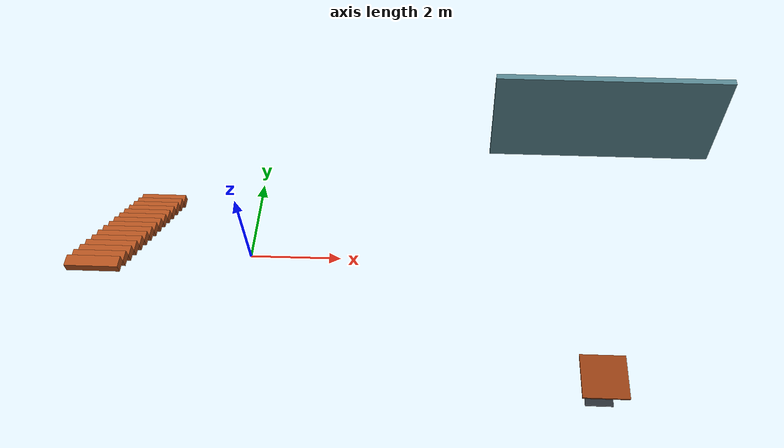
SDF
<sdf version="1.6">
 <world name="default">
  <model name="inco_planta_baja_0">
   <link name="Stairs_0">
    <visual name="Stairs_0_Visual_2">
     <pose>-9.24623 1.59162 0.416667 0 -0 0</pose>
     <geometry><box><size>1 0.233333 0.166667</size></box></geometry>
     <material>
      <ambient>0.25 0.12 0.05 1</ambient>
      <diffuse>0.70 0.32 0.12 1</diffuse>
      <specular>0.12 0.12 0.12 1</specular>
      <emissive>0 0 0 1</emissive>
     </material>
    </visual>
    <visual name="Stairs_0_Visual_0">
     <pose>-9.24623 2.05829 0.083333 0 -0 0</pose>
     <geometry><box><size>1 0.233333 0.166667</size></box></geometry>
     <material>
      <ambient>0.25 0.12 0.05 1</ambient>
      <diffuse>0.70 0.32 0.12 1</diffuse>
      <specular>0.12 0.12 0.12 1</specular>
      <emissive>0 0 0 1</emissive>
     </material>
    </visual>
    <visual name="Stairs_0_Visual_1">
     <pose>-9.24623 1.82496 0.25 0 -0 0</pose>
     <geometry><box><size>1 0.233333 0.166667</size></box></geometry>
     <material>
      <ambient>0.25 0.12 0.05 1</ambient>
      <diffuse>0.70 0.32 0.12 1</diffuse>
      <specular>0.12 0.12 0.12 1</specular>
      <emissive>0 0 0 1</emissive>
     </material>
    </visual>
    <visual name="Stairs_0_Visual_3">
     <pose>-9.24623 1.35829 0.583333 0 -0 0</pose>
     <geometry><box><size>1 0.233333 0.166667</size></box></geometry>
     <material>
      <ambient>0.25 0.12 0.05 1</ambient>
      <diffuse>0.70 0.32 0.12 1</diffuse>
      <specular>0.12 0.12 0.12 1</specular>
      <emissive>0 0 0 1</emissive>
     </material>
    </visual>
    <visual name="Stairs_0_Visual_4">
     <pose>-9.24623 1.12495 0.75 0 -0 0</pose>
     <geometry><box><size>1 0.233333 0.166667</size></box></geometry>
     <material>
      <ambient>0.25 0.12 0.05 1</ambient>
      <diffuse>0.70 0.32 0.12 1</diffuse>
      <specular>0.12 0.12 0.12 1</specular>
      <emissive>0 0 0 1</emissive>
     </material>
    </visual>
    <visual name="Stairs_0_Visual_5">
     <pose>-9.24623 0.891622 0.916667 0 -0 0</pose>
     <geometry><box><size>1 0.233333 0.166667</size></box></geometry>
     <material>
      <ambient>0.25 0.12 0.05 1</ambient>
      <diffuse>0.70 0.32 0.12 1</diffuse>
      <specular>0.12 0.12 0.12 1</specular>
      <emissive>0 0 0 1</emissive>
     </material>
    </visual>
    <visual name="Stairs_0_Visual_6">
     <pose>-9.24623 0.658289 1.08333 0 -0 0</pose>
     <geometry><box><size>1 0.233333 0.166667</size></box></geometry>
     <material>
      <ambient>0.25 0.12 0.05 1</ambient>
      <diffuse>0.70 0.32 0.12 1</diffuse>
      <specular>0.12 0.12 0.12 1</specular>
      <emissive>0 0 0 1</emissive>
     </material>
    </visual>
    <visual name="Stairs_0_Visual_8">
     <pose>-9.24623 0.191622 1.41667 0 -0 0</pose>
     <geometry><box><size>1 0.233333 0.166667</size></box></geometry>
     <material>
      <ambient>0.25 0.12 0.05 1</ambient>
      <diffuse>0.70 0.32 0.12 1</diffuse>
      <specular>0.12 0.12 0.12 1</specular>
      <emissive>0 0 0 1</emissive>
     </material>
    </visual>
    <visual name="Stairs_0_Visual_7">
     <pose>-9.24623 0.424955 1.25 0 -0 0</pose>
     <geometry><box><size>1 0.233333 0.166667</size></box></geometry>
     <material>
      <ambient>0.25 0.12 0.05 1</ambient>
      <diffuse>0.70 0.32 0.12 1</diffuse>
      <specular>0.12 0.12 0.12 1</specular>
      <emissive>0 0 0 1</emissive>
     </material>
    </visual>
    <visual name="Stairs_0_Visual_9">
     <pose>-9.24623 -0.041711 1.58333 0 -0 0</pose>
     <geometry><box><size>1 0.233333 0.166667</size></box></geometry>
     <material>
      <ambient>0.25 0.12 0.05 1</ambient>
      <diffuse>0.70 0.32 0.12 1</diffuse>
      <specular>0.12 0.12 0.12 1</specular>
      <emissive>0 0 0 1</emissive>
     </material>
    </visual>
    <visual name="Stairs_0_Visual_10">
     <pose>-9.24623 -0.275045 1.75 0 -0 0</pose>
     <geometry><box><size>1 0.233333 0.166667</size></box></geometry>
     <material>
      <ambient>0.25 0.12 0.05 1</ambient>
      <diffuse>0.70 0.32 0.12 1</diffuse>
      <specular>0.12 0.12 0.12 1</specular>
      <emissive>0 0 0 1</emissive>
     </material>
    </visual>
    <visual name="Stairs_0_Visual_11">
     <pose>-9.24623 -0.508378 1.91667 0 -0 0</pose>
     <geometry><box><size>1 0.233333 0.166667</size></box></geometry>
     <material>
      <ambient>0.25 0.12 0.05 1</ambient>
      <diffuse>0.70 0.32 0.12 1</diffuse>
      <specular>0.12 0.12 0.12 1</specular>
      <emissive>0 0 0 1</emissive>
     </material>
    </visual>
    <visual name="Stairs_0_Visual_12">
     <pose>-9.24623 -0.741711 2.08333 0 -0 0</pose>
     <geometry><box><size>1 0.233333 0.166667</size></box></geometry>
     <material>
      <ambient>0.25 0.12 0.05 1</ambient>
      <diffuse>0.70 0.32 0.12 1</diffuse>
      <specular>0.12 0.12 0.12 1</specular>
      <emissive>0 0 0 1</emissive>
     </material>
    </visual>
    <visual name="Stairs_0_Visual_13">
     <pose>-9.24623 -0.975045 2.25 0 -0 0</pose>
     <geometry><box><size>1 0.233333 0.166667</size></box></geometry>
     <material>
      <ambient>0.25 0.12 0.05 1</ambient>
      <diffuse>0.70 0.32 0.12 1</diffuse>
      <specular>0.12 0.12 0.12 1</specular>
      <emissive>0 0 0 1</emissive>
     </material>
    </visual>
    <visual name="Stairs_0_Visual_14">
     <pose>-9.24623 -1.20838 2.41667 0 -0 0</pose>
     <geometry><box><size>1 0.233333 0.166667</size></box></geometry>
     <material>
      <ambient>0.25 0.12 0.05 1</ambient>
      <diffuse>0.70 0.32 0.12 1</diffuse>
      <specular>0.12 0.12 0.12 1</specular>
      <emissive>0 0 0 1</emissive>
     </material>
    </visual>
    <collision name="Stairs_0_Collision_0">
     <pose>-9.24623 2.05829 0.083333 0 -0 0</pose>
     <geometry><box><size>1 0.233333 0.166667</size></box></geometry>
     <surface>
      <friction>
       <ode><mu>1</mu><mu2>1</mu2><fdir1>0 0 0</fdir1><slip1>0</slip1><slip2>0</slip2></ode>
       <torsional>
        <coefficient>1</coefficient>
        <patch_radius>0</patch_radius>
        <surface_radius>0</surface_radius>
        <use_patch_radius>1</use_patch_radius>
        <ode><slip>0</slip></ode>
       </torsional>
      </friction>
      <bounce><restitution_coefficient>0</restitution_coefficient><threshold>1e+06</threshold></bounce>
      <contact>
       <collide_without_contact>0</collide_without_contact>
       <collide_without_contact_bitmask>1</collide_without_contact_bitmask>
       <collide_bitmask>1</collide_bitmask>
       <ode>
        <soft_cfm>0</soft_cfm>
        <soft_erp>0.2</soft_erp>
        <kp>1e+13</kp>
        <kd>1</kd>
        <max_vel>0.01</max_vel>
        <min_depth>0</min_depth>
       </ode>
       <bullet>
        <split_impulse>1</split_impulse>
        <split_impulse_penetration_threshold>-0.01</split_impulse_penetration_threshold>
        <soft_cfm>0</soft_cfm>
        <soft_erp>0.2</soft_erp>
        <kp>1e+13</kp>
        <kd>1</kd>
       </bullet>
      </contact>
     </surface>
    </collision>
    <collision name="Stairs_0_Collision_1">
     <pose>-9.24623 1.82496 0.25 0 -0 0</pose>
     <geometry><box><size>1 0.233333 0.166667</size></box></geometry>
     <surface>
      <friction>
       <ode><mu>1</mu><mu2>1</mu2><fdir1>0 0 0</fdir1><slip1>0</slip1><slip2>0</slip2></ode>
       <torsional>
        <coefficient>1</coefficient>
        <patch_radius>0</patch_radius>
        <surface_radius>0</surface_radius>
        <use_patch_radius>1</use_patch_radius>
        <ode><slip>0</slip></ode>
       </torsional>
      </friction>
      <bounce><restitution_coefficient>0</restitution_coefficient><threshold>1e+06</threshold></bounce>
      <contact>
       <collide_without_contact>0</collide_without_contact>
       <collide_without_contact_bitmask>1</collide_without_contact_bitmask>
       <collide_bitmask>1</collide_bitmask>
       <ode>
        <soft_cfm>0</soft_cfm>
        <soft_erp>0.2</soft_erp>
        <kp>1e+13</kp>
        <kd>1</kd>
        <max_vel>0.01</max_vel>
        <min_depth>0</min_depth>
       </ode>
       <bullet>
        <split_impulse>1</split_impulse>
        <split_impulse_penetration_threshold>-0.01</split_impulse_penetration_threshold>
        <soft_cfm>0</soft_cfm>
        <soft_erp>0.2</soft_erp>
        <kp>1e+13</kp>
        <kd>1</kd>
       </bullet>
      </contact>
     </surface>
    </collision>
    <collision name="Stairs_0_Collision_7">
     <pose>-9.24623 0.424955 1.25 0 -0 0</pose>
     <geometry><box><size>1 0.233333 0.166667</size></box></geometry>
     <surface>
      <friction>
       <ode><mu>1</mu><mu2>1</mu2><fdir1>0 0 0</fdir1><slip1>0</slip1><slip2>0</slip2></ode>
       <torsional>
        <coefficient>1</coefficient>
        <patch_radius>0</patch_radius>
        <surface_radius>0</surface_radius>
        <use_patch_radius>1</use_patch_radius>
        <ode><slip>0</slip></ode>
       </torsional>
      </friction>
      <bounce><restitution_coefficient>0</restitution_coefficient><threshold>1e+06</threshold></bounce>
      <contact>
       <collide_without_contact>0</collide_without_contact>
       <collide_without_contact_bitmask>1</collide_without_contact_bitmask>
       <collide_bitmask>1</collide_bitmask>
       <ode>
        <soft_cfm>0</soft_cfm>
        <soft_erp>0.2</soft_erp>
        <kp>1e+13</kp>
        <kd>1</kd>
        <max_vel>0.01</max_vel>
        <min_depth>0</min_depth>
       </ode>
       <bullet>
        <split_impulse>1</split_impulse>
        <split_impulse_penetration_threshold>-0.01</split_impulse_penetration_threshold>
        <soft_cfm>0</soft_cfm>
        <soft_erp>0.2</soft_erp>
        <kp>1e+13</kp>
        <kd>1</kd>
       </bullet>
      </contact>
     </surface>
    </collision>
    <collision name="Stairs_0_Collision_2">
     <pose>-9.24623 1.59162 0.416667 0 -0 0</pose>
     <geometry><box><size>1 0.233333 0.166667</size></box></geometry>
     <surface>
      <friction>
       <ode><mu>1</mu><mu2>1</mu2><fdir1>0 0 0</fdir1><slip1>0</slip1><slip2>0</slip2></ode>
       <torsional>
        <coefficient>1</coefficient>
        <patch_radius>0</patch_radius>
        <surface_radius>0</surface_radius>
        <use_patch_radius>1</use_patch_radius>
        <ode><slip>0</slip></ode>
       </torsional>
      </friction>
      <bounce><restitution_coefficient>0</restitution_coefficient><threshold>1e+06</threshold></bounce>
      <contact>
       <collide_without_contact>0</collide_without_contact>
       <collide_without_contact_bitmask>1</collide_without_contact_bitmask>
       <collide_bitmask>1</collide_bitmask>
       <ode>
        <soft_cfm>0</soft_cfm>
        <soft_erp>0.2</soft_erp>
        <kp>1e+13</kp>
        <kd>1</kd>
        <max_vel>0.01</max_vel>
        <min_depth>0</min_depth>
       </ode>
       <bullet>
        <split_impulse>1</split_impulse>
        <split_impulse_penetration_threshold>-0.01</split_impulse_penetration_threshold>
        <soft_cfm>0</soft_cfm>
        <soft_erp>0.2</soft_erp>
        <kp>1e+13</kp>
        <kd>1</kd>
       </bullet>
      </contact>
     </surface>
    </collision>
    <collision name="Stairs_0_Collision_3">
     <pose>-9.24623 1.35829 0.583333 0 -0 0</pose>
     <geometry><box><size>1 0.233333 0.166667</size></box></geometry>
     <surface>
      <friction>
       <ode><mu>1</mu><mu2>1</mu2><fdir1>0 0 0</fdir1><slip1>0</slip1><slip2>0</slip2></ode>
       <torsional>
        <coefficient>1</coefficient>
        <patch_radius>0</patch_radius>
        <surface_radius>0</surface_radius>
        <use_patch_radius>1</use_patch_radius>
        <ode><slip>0</slip></ode>
       </torsional>
      </friction>
      <bounce><restitution_coefficient>0</restitution_coefficient><threshold>1e+06</threshold></bounce>
      <contact>
       <collide_without_contact>0</collide_without_contact>
       <collide_without_contact_bitmask>1</collide_without_contact_bitmask>
       <collide_bitmask>1</collide_bitmask>
       <ode>
        <soft_cfm>0</soft_cfm>
        <soft_erp>0.2</soft_erp>
        <kp>1e+13</kp>
        <kd>1</kd>
        <max_vel>0.01</max_vel>
        <min_depth>0</min_depth>
       </ode>
       <bullet>
        <split_impulse>1</split_impulse>
        <split_impulse_penetration_threshold>-0.01</split_impulse_penetration_threshold>
        <soft_cfm>0</soft_cfm>
        <soft_erp>0.2</soft_erp>
        <kp>1e+13</kp>
        <kd>1</kd>
       </bullet>
      </contact>
     </surface>
    </collision>
    <collision name="Stairs_0_Collision_4">
     <pose>-9.24623 1.12495 0.75 0 -0 0</pose>
     <geometry><box><size>1 0.233333 0.166667</size></box></geometry>
     <surface>
      <friction>
       <ode><mu>1</mu><mu2>1</mu2><fdir1>0 0 0</fdir1><slip1>0</slip1><slip2>0</slip2></ode>
       <torsional>
        <coefficient>1</coefficient>
        <patch_radius>0</patch_radius>
        <surface_radius>0</surface_radius>
        <use_patch_radius>1</use_patch_radius>
        <ode><slip>0</slip></ode>
       </torsional>
      </friction>
      <bounce><restitution_coefficient>0</restitution_coefficient><threshold>1e+06</threshold></bounce>
      <contact>
       <collide_without_contact>0</collide_without_contact>
       <collide_without_contact_bitmask>1</collide_without_contact_bitmask>
       <collide_bitmask>1</collide_bitmask>
       <ode>
        <soft_cfm>0</soft_cfm>
        <soft_erp>0.2</soft_erp>
        <kp>1e+13</kp>
        <kd>1</kd>
        <max_vel>0.01</max_vel>
        <min_depth>0</min_depth>
       </ode>
       <bullet>
        <split_impulse>1</split_impulse>
        <split_impulse_penetration_threshold>-0.01</split_impulse_penetration_threshold>
        <soft_cfm>0</soft_cfm>
        <soft_erp>0.2</soft_erp>
        <kp>1e+13</kp>
        <kd>1</kd>
       </bullet>
      </contact>
     </surface>
    </collision>
    <collision name="Stairs_0_Collision_5">
     <pose>-9.24623 0.891622 0.916667 0 -0 0</pose>
     <geometry><box><size>1 0.233333 0.166667</size></box></geometry>
     <surface>
      <friction>
       <ode><mu>1</mu><mu2>1</mu2><fdir1>0 0 0</fdir1><slip1>0</slip1><slip2>0</slip2></ode>
       <torsional>
        <coefficient>1</coefficient>
        <patch_radius>0</patch_radius>
        <surface_radius>0</surface_radius>
        <use_patch_radius>1</use_patch_radius>
        <ode><slip>0</slip></ode>
       </torsional>
      </friction>
      <bounce><restitution_coefficient>0</restitution_coefficient><threshold>1e+06</threshold></bounce>
      <contact>
       <collide_without_contact>0</collide_without_contact>
       <collide_without_contact_bitmask>1</collide_without_contact_bitmask>
       <collide_bitmask>1</collide_bitmask>
       <ode>
        <soft_cfm>0</soft_cfm>
        <soft_erp>0.2</soft_erp>
        <kp>1e+13</kp>
        <kd>1</kd>
        <max_vel>0.01</max_vel>
        <min_depth>0</min_depth>
       </ode>
       <bullet>
        <split_impulse>1</split_impulse>
        <split_impulse_penetration_threshold>-0.01</split_impulse_penetration_threshold>
        <soft_cfm>0</soft_cfm>
        <soft_erp>0.2</soft_erp>
        <kp>1e+13</kp>
        <kd>1</kd>
       </bullet>
      </contact>
     </surface>
    </collision>
    <collision name="Stairs_0_Collision_6">
     <pose>-9.24623 0.658289 1.08333 0 -0 0</pose>
     <geometry><box><size>1 0.233333 0.166667</size></box></geometry>
     <surface>
      <friction>
       <ode><mu>1</mu><mu2>1</mu2><fdir1>0 0 0</fdir1><slip1>0</slip1><slip2>0</slip2></ode>
       <torsional>
        <coefficient>1</coefficient>
        <patch_radius>0</patch_radius>
        <surface_radius>0</surface_radius>
        <use_patch_radius>1</use_patch_radius>
        <ode><slip>0</slip></ode>
       </torsional>
      </friction>
      <bounce><restitution_coefficient>0</restitution_coefficient><threshold>1e+06</threshold></bounce>
      <contact>
       <collide_without_contact>0</collide_without_contact>
       <collide_without_contact_bitmask>1</collide_without_contact_bitmask>
       <collide_bitmask>1</collide_bitmask>
       <ode>
        <soft_cfm>0</soft_cfm>
        <soft_erp>0.2</soft_erp>
        <kp>1e+13</kp>
        <kd>1</kd>
        <max_vel>0.01</max_vel>
        <min_depth>0</min_depth>
       </ode>
       <bullet>
        <split_impulse>1</split_impulse>
        <split_impulse_penetration_threshold>-0.01</split_impulse_penetration_threshold>
        <soft_cfm>0</soft_cfm>
        <soft_erp>0.2</soft_erp>
        <kp>1e+13</kp>
        <kd>1</kd>
       </bullet>
      </contact>
     </surface>
    </collision>
    <collision name="Stairs_0_Collision_8">
     <pose>-9.24623 0.191622 1.41667 0 -0 0</pose>
     <geometry><box><size>1 0.233333 0.166667</size></box></geometry>
     <surface>
      <friction>
       <ode><mu>1</mu><mu2>1</mu2><fdir1>0 0 0</fdir1><slip1>0</slip1><slip2>0</slip2></ode>
       <torsional>
        <coefficient>1</coefficient>
        <patch_radius>0</patch_radius>
        <surface_radius>0</surface_radius>
        <use_patch_radius>1</use_patch_radius>
        <ode><slip>0</slip></ode>
       </torsional>
      </friction>
      <bounce><restitution_coefficient>0</restitution_coefficient><threshold>1e+06</threshold></bounce>
      <contact>
       <collide_without_contact>0</collide_without_contact>
       <collide_without_contact_bitmask>1</collide_without_contact_bitmask>
       <collide_bitmask>1</collide_bitmask>
       <ode>
        <soft_cfm>0</soft_cfm>
        <soft_erp>0.2</soft_erp>
        <kp>1e+13</kp>
        <kd>1</kd>
        <max_vel>0.01</max_vel>
        <min_depth>0</min_depth>
       </ode>
       <bullet>
        <split_impulse>1</split_impulse>
        <split_impulse_penetration_threshold>-0.01</split_impulse_penetration_threshold>
        <soft_cfm>0</soft_cfm>
        <soft_erp>0.2</soft_erp>
        <kp>1e+13</kp>
        <kd>1</kd>
       </bullet>
      </contact>
     </surface>
    </collision>
    <collision name="Stairs_0_Collision_9">
     <pose>-9.24623 -0.041711 1.58333 0 -0 0</pose>
     <geometry><box><size>1 0.233333 0.166667</size></box></geometry>
     <surface>
      <friction>
       <ode><mu>1</mu><mu2>1</mu2><fdir1>0 0 0</fdir1><slip1>0</slip1><slip2>0</slip2></ode>
       <torsional>
        <coefficient>1</coefficient>
        <patch_radius>0</patch_radius>
        <surface_radius>0</surface_radius>
        <use_patch_radius>1</use_patch_radius>
        <ode><slip>0</slip></ode>
       </torsional>
      </friction>
      <bounce><restitution_coefficient>0</restitution_coefficient><threshold>1e+06</threshold></bounce>
      <contact>
       <collide_without_contact>0</collide_without_contact>
       <collide_without_contact_bitmask>1</collide_without_contact_bitmask>
       <collide_bitmask>1</collide_bitmask>
       <ode>
        <soft_cfm>0</soft_cfm>
        <soft_erp>0.2</soft_erp>
        <kp>1e+13</kp>
        <kd>1</kd>
        <max_vel>0.01</max_vel>
        <min_depth>0</min_depth>
       </ode>
       <bullet>
        <split_impulse>1</split_impulse>
        <split_impulse_penetration_threshold>-0.01</split_impulse_penetration_threshold>
        <soft_cfm>0</soft_cfm>
        <soft_erp>0.2</soft_erp>
        <kp>1e+13</kp>
        <kd>1</kd>
       </bullet>
      </contact>
     </surface>
    </collision>
    <collision name="Stairs_0_Collision_10">
     <pose>-9.24623 -0.275045 1.75 0 -0 0</pose>
     <geometry><box><size>1 0.233333 0.166667</size></box></geometry>
     <surface>
      <friction>
       <ode><mu>1</mu><mu2>1</mu2><fdir1>0 0 0</fdir1><slip1>0</slip1><slip2>0</slip2></ode>
       <torsional>
        <coefficient>1</coefficient>
        <patch_radius>0</patch_radius>
        <surface_radius>0</surface_radius>
        <use_patch_radius>1</use_patch_radius>
        <ode><slip>0</slip></ode>
       </torsional>
      </friction>
      <bounce><restitution_coefficient>0</restitution_coefficient><threshold>1e+06</threshold></bounce>
      <contact>
       <collide_without_contact>0</collide_without_contact>
       <collide_without_contact_bitmask>1</collide_without_contact_bitmask>
       <collide_bitmask>1</collide_bitmask>
       <ode>
        <soft_cfm>0</soft_cfm>
        <soft_erp>0.2</soft_erp>
        <kp>1e+13</kp>
        <kd>1</kd>
        <max_vel>0.01</max_vel>
        <min_depth>0</min_depth>
       </ode>
       <bullet>
        <split_impulse>1</split_impulse>
        <split_impulse_penetration_threshold>-0.01</split_impulse_penetration_threshold>
        <soft_cfm>0</soft_cfm>
        <soft_erp>0.2</soft_erp>
        <kp>1e+13</kp>
        <kd>1</kd>
       </bullet>
      </contact>
     </surface>
    </collision>
    <collision name="Stairs_0_Collision_11">
     <pose>-9.24623 -0.508378 1.91667 0 -0 0</pose>
     <geometry><box><size>1 0.233333 0.166667</size></box></geometry>
     <surface>
      <friction>
       <ode><mu>1</mu><mu2>1</mu2><fdir1>0 0 0</fdir1><slip1>0</slip1><slip2>0</slip2></ode>
       <torsional>
        <coefficient>1</coefficient>
        <patch_radius>0</patch_radius>
        <surface_radius>0</surface_radius>
        <use_patch_radius>1</use_patch_radius>
        <ode><slip>0</slip></ode>
       </torsional>
      </friction>
      <bounce><restitution_coefficient>0</restitution_coefficient><threshold>1e+06</threshold></bounce>
      <contact>
       <collide_without_contact>0</collide_without_contact>
       <collide_without_contact_bitmask>1</collide_without_contact_bitmask>
       <collide_bitmask>1</collide_bitmask>
       <ode>
        <soft_cfm>0</soft_cfm>
        <soft_erp>0.2</soft_erp>
        <kp>1e+13</kp>
        <kd>1</kd>
        <max_vel>0.01</max_vel>
        <min_depth>0</min_depth>
       </ode>
       <bullet>
        <split_impulse>1</split_impulse>
        <split_impulse_penetration_threshold>-0.01</split_impulse_penetration_threshold>
        <soft_cfm>0</soft_cfm>
        <soft_erp>0.2</soft_erp>
        <kp>1e+13</kp>
        <kd>1</kd>
       </bullet>
      </contact>
     </surface>
    </collision>
    <collision name="Stairs_0_Collision_13">
     <pose>-9.24623 -0.975045 2.25 0 -0 0</pose>
     <geometry><box><size>1 0.233333 0.166667</size></box></geometry>
     <surface>
      <friction>
       <ode><mu>1</mu><mu2>1</mu2><fdir1>0 0 0</fdir1><slip1>0</slip1><slip2>0</slip2></ode>
       <torsional>
        <coefficient>1</coefficient>
        <patch_radius>0</patch_radius>
        <surface_radius>0</surface_radius>
        <use_patch_radius>1</use_patch_radius>
        <ode><slip>0</slip></ode>
       </torsional>
      </friction>
      <bounce><restitution_coefficient>0</restitution_coefficient><threshold>1e+06</threshold></bounce>
      <contact>
       <collide_without_contact>0</collide_without_contact>
       <collide_without_contact_bitmask>1</collide_without_contact_bitmask>
       <collide_bitmask>1</collide_bitmask>
       <ode>
        <soft_cfm>0</soft_cfm>
        <soft_erp>0.2</soft_erp>
        <kp>1e+13</kp>
        <kd>1</kd>
        <max_vel>0.01</max_vel>
        <min_depth>0</min_depth>
       </ode>
       <bullet>
        <split_impulse>1</split_impulse>
        <split_impulse_penetration_threshold>-0.01</split_impulse_penetration_threshold>
        <soft_cfm>0</soft_cfm>
        <soft_erp>0.2</soft_erp>
        <kp>1e+13</kp>
        <kd>1</kd>
       </bullet>
      </contact>
     </surface>
    </collision>
    <collision name="Stairs_0_Collision_12">
     <pose>-9.24623 -0.741711 2.08333 0 -0 0</pose>
     <geometry><box><size>1 0.233333 0.166667</size></box></geometry>
     <surface>
      <friction>
       <ode><mu>1</mu><mu2>1</mu2><fdir1>0 0 0</fdir1><slip1>0</slip1><slip2>0</slip2></ode>
       <torsional>
        <coefficient>1</coefficient>
        <patch_radius>0</patch_radius>
        <surface_radius>0</surface_radius>
        <use_patch_radius>1</use_patch_radius>
        <ode><slip>0</slip></ode>
       </torsional>
      </friction>
      <bounce><restitution_coefficient>0</restitution_coefficient><threshold>1e+06</threshold></bounce>
      <contact>
       <collide_without_contact>0</collide_without_contact>
       <collide_without_contact_bitmask>1</collide_without_contact_bitmask>
       <collide_bitmask>1</collide_bitmask>
       <ode>
        <soft_cfm>0</soft_cfm>
        <soft_erp>0.2</soft_erp>
        <kp>1e+13</kp>
        <kd>1</kd>
        <max_vel>0.01</max_vel>
        <min_depth>0</min_depth>
       </ode>
       <bullet>
        <split_impulse>1</split_impulse>
        <split_impulse_penetration_threshold>-0.01</split_impulse_penetration_threshold>
        <soft_cfm>0</soft_cfm>
        <soft_erp>0.2</soft_erp>
        <kp>1e+13</kp>
        <kd>1</kd>
       </bullet>
      </contact>
     </surface>
    </collision>
    <collision name="Stairs_0_Collision_14">
     <pose>-9.24623 -1.20838 2.41667 0 -0 0</pose>
     <geometry><box><size>1 0.233333 0.166667</size></box></geometry>
     <surface>
      <friction>
       <ode><mu>1</mu><mu2>1</mu2><fdir1>0 0 0</fdir1><slip1>0</slip1><slip2>0</slip2></ode>
       <torsional>
        <coefficient>1</coefficient>
        <patch_radius>0</patch_radius>
        <surface_radius>0</surface_radius>
        <use_patch_radius>1</use_patch_radius>
        <ode><slip>0</slip></ode>
       </torsional>
      </friction>
      <bounce><restitution_coefficient>0</restitution_coefficient><threshold>1e+06</threshold></bounce>
      <contact>
       <collide_without_contact>0</collide_without_contact>
       <collide_without_contact_bitmask>1</collide_without_contact_bitmask>
       <collide_bitmask>1</collide_bitmask>
       <ode>
        <soft_cfm>0</soft_cfm>
        <soft_erp>0.2</soft_erp>
        <kp>1e+13</kp>
        <kd>1</kd>
        <max_vel>0.01</max_vel>
        <min_depth>0</min_depth>
       </ode>
       <bullet>
        <split_impulse>1</split_impulse>
        <split_impulse_penetration_threshold>-0.01</split_impulse_penetration_threshold>
        <soft_cfm>0</soft_cfm>
        <soft_erp>0.2</soft_erp>
        <kp>1e+13</kp>
        <kd>1</kd>
       </bullet>
      </contact>
     </surface>
    </collision>
   </link>
   <link name="Wall_151">
    <pose>0.966646 3.92355 0 0 -0 0</pose>
    <visual name="Wall_151_Visual">
     <pose>0 0 1.25 0 -0 0</pose>
     <geometry><box><size>5.25 0.15 2.5</size></box></geometry>
     <material>
      <ambient>0.22 0.31 0.34 1</ambient>
      <diffuse>0.34 0.52 0.56 1</diffuse>
      <specular>0.05 0.05 0.05 1</specular>
      <emissive>0 0 0 1</emissive>
     </material>
    </visual>
    <collision name="Wall_151_Collision">
     <pose>0 0 1.25 0 -0 0</pose>
     <geometry><box><size>5.25 0.15 2.5</size></box></geometry>
     <surface>
      <friction>
       <ode><mu>1</mu><mu2>1</mu2><fdir1>0 0 0</fdir1><slip1>0</slip1><slip2>0</slip2></ode>
       <torsional>
        <coefficient>1</coefficient>
        <patch_radius>0</patch_radius>
        <surface_radius>0</surface_radius>
        <use_patch_radius>1</use_patch_radius>
        <ode><slip>0</slip></ode>
       </torsional>
      </friction>
      <bounce><restitution_coefficient>0</restitution_coefficient><threshold>1e+06</threshold></bounce>
      <contact>
       <collide_without_contact>0</collide_without_contact>
       <collide_without_contact_bitmask>1</collide_without_contact_bitmask>
       <collide_bitmask>1</collide_bitmask>
       <ode>
        <soft_cfm>0</soft_cfm>
        <soft_erp>0.2</soft_erp>
        <kp>1e+13</kp>
        <kd>1</kd>
        <max_vel>0.01</max_vel>
        <min_depth>0</min_depth>
       </ode>
       <bullet>
        <split_impulse>1</split_impulse>
        <split_impulse_penetration_threshold>-0.01</split_impulse_penetration_threshold>
        <soft_cfm>0</soft_cfm>
        <soft_erp>0.2</soft_erp>
        <kp>1e+13</kp>
        <kd>1</kd>
       </bullet>
      </contact>
     </surface>
    </collision>
   </link>
   <static>1</static>
   <pose>6.99641 -0.640898 0 0 -0 0</pose>
  </model>
  <model name="cafe_table_3">
   <static>1</static>
   <link name="link">
    <collision name="surface">
     <pose>0 0 0.755 0 -0 0</pose>
     <geometry><box><size>0.913 0.913 0.04</size></box></geometry>
    </collision>
    <collision name="column">
     <pose>0 0 0.37 0 -0 0</pose>
     <geometry><box><size>0.042 0.042 0.74</size></box></geometry>
    </collision>
    <collision name="base">
     <pose>0 0 0.02 0 -0 0</pose>
     <geometry><box><size>0.56 0.56 0.04</size></box></geometry>
    </collision>
    <visual name="styled_surface">
     <pose>0 0 0.755 0 0 0</pose>
     <geometry><box><size>0.913 0.913 0.04</size></box></geometry>
     <material>
      <ambient>0.20 0.08 0.025 1</ambient>
      <diffuse>0.58 0.24 0.07 1</diffuse>
      <specular>0.12 0.09 0.06 1</specular>
      <emissive>0 0 0 1</emissive>
     </material>
    </visual>
    <visual name="styled_column">
     <pose>0 0 0.37 0 0 0</pose>
     <geometry><box><size>0.042 0.042 0.74</size></box></geometry>
     <material>
      <ambient>0.08 0.09 0.10 1</ambient>
      <diffuse>0.16 0.18 0.20 1</diffuse>
      <specular>0.35 0.35 0.35 1</specular>
      <emissive>0 0 0 1</emissive>
     </material>
    </visual>
    <visual name="styled_base">
     <pose>0 0 0.02 0 0 0</pose>
     <geometry><box><size>0.56 0.56 0.04</size></box></geometry>
     <material>
      <ambient>0.08 0.09 0.10 1</ambient>
      <diffuse>0.16 0.18 0.20 1</diffuse>
      <specular>0.35 0.35 0.35 1</specular>
      <emissive>0 0 0 1</emissive>
     </material>
    </visual>
   </link>
   <pose>7.44893 -3.03367 0 0 -0 0</pose>
  </model>
 </world>
</sdf>
